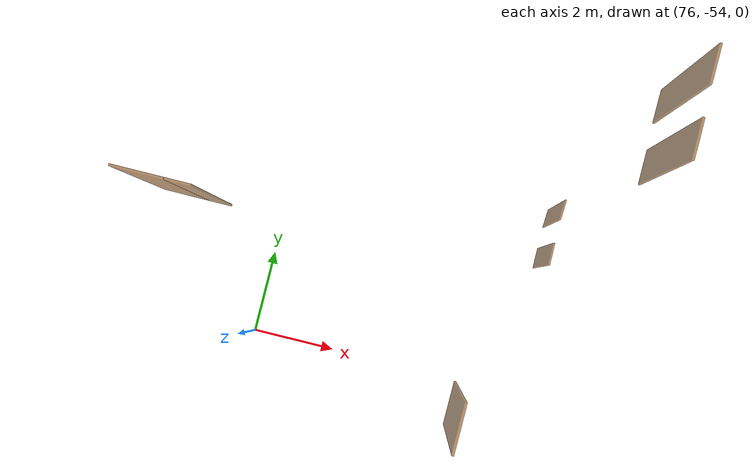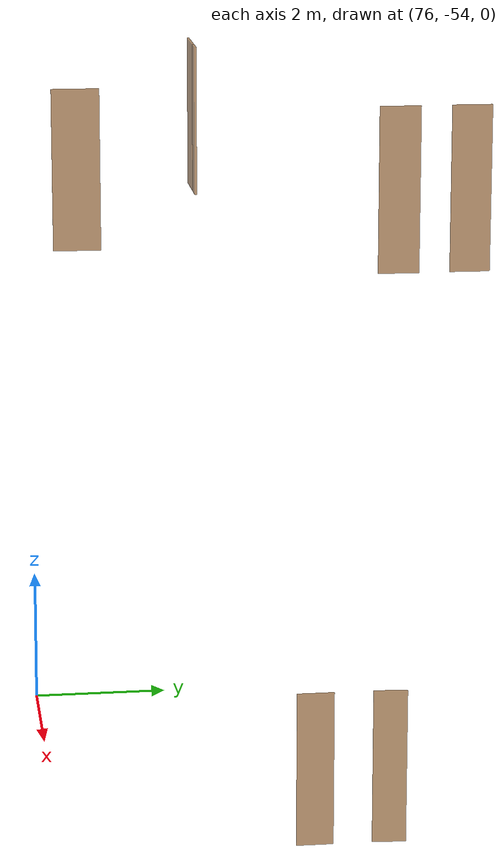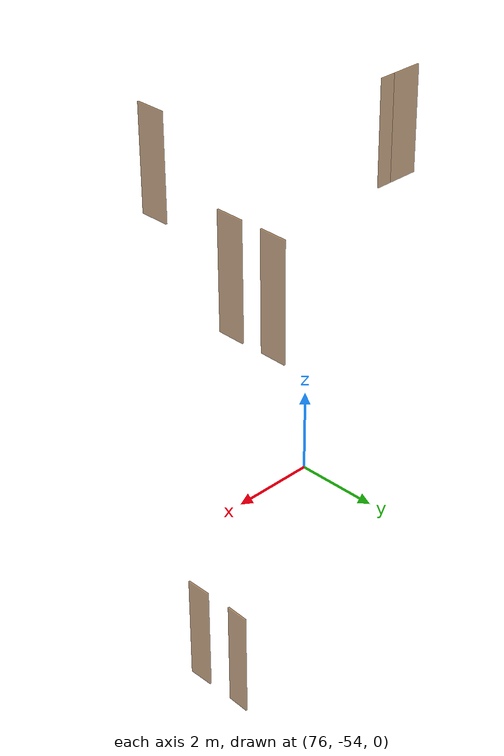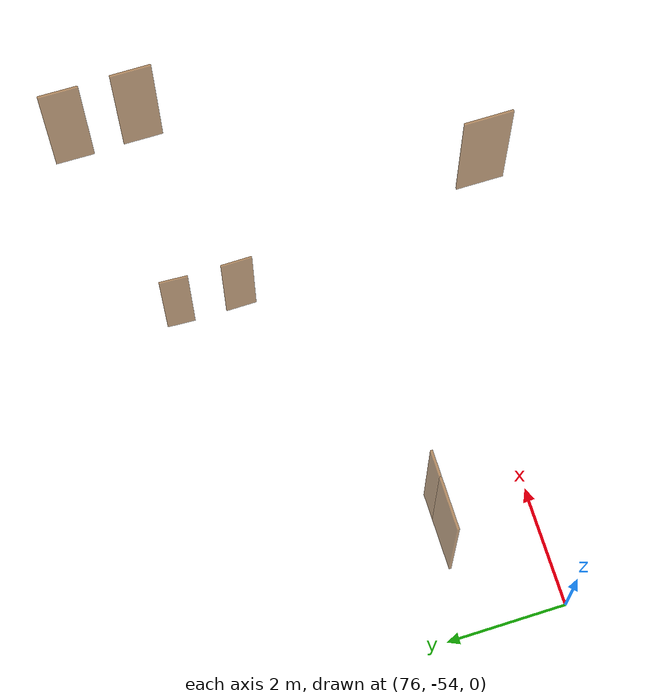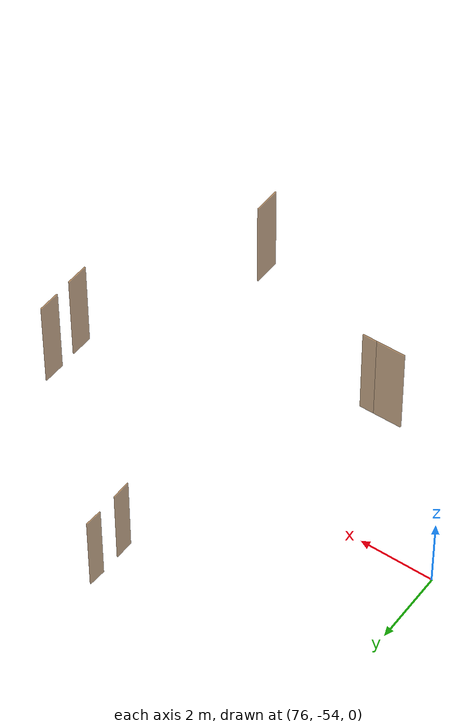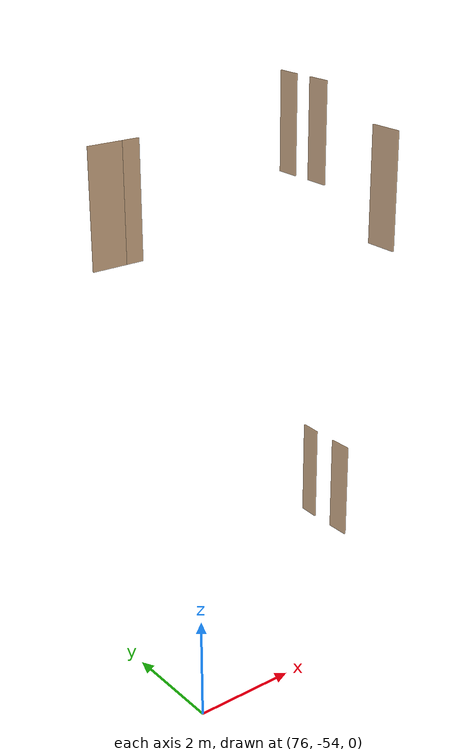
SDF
<sdf version="1.7">
 <world name="sim_world">
  <model name="bano013">
   <pose>82.40057625517343 -49.518308076902656 0.0 0 0 1.5131615643267342</pose>
   <link name="right">
    <pose>0 0 1.11 0 0 0</pose>
    <visual name="right_visual">
     <geometry><box><size>0.4661509275095324 0.03 2.2</size></box></geometry>
     <material>
      <ambient>0.5 0.25 0 0.6</ambient>
      <diffuse>0.5 0.25 0 0.6</diffuse>
      <pbr><metal><metalness>0.0</metalness></metal></pbr>
     </material>
    </visual>
    <collision name="right_collision">
     <geometry><box><size>0.4661509275095324 0.03 2.2</size></box></geometry>
     <surface><contact><collide_bitmask>0x02</collide_bitmask></contact></surface>
    </collision>
    <inertial>
     <mass>50.0</mass>
     <inertia><ixx>20.17041666666667</ixx><iyy>21.072069530074995</iyy><izz>0.9091528634083224</izz></inertia>
    </inertial>
   </link>
   <joint name="right_joint" type="revolute">
    <parent>world</parent>
    <child>right</child>
    <axis><xyz>0 0 -1</xyz><limit><lower>0</lower><upper>1.57</upper></limit></axis>
    <pose>0.2380754637547662 0 0 0 0 0</pose>
   </joint>
   <plugin name="register_component" filename="libregister_component.so">
    <component name="Door">
     <v_max_door>0.5</v_max_door>
     <a_max_door>0.3</a_max_door>
     <a_nom_door>0.15</a_nom_door>
     <dx_min_door>0.01</dx_min_door>
     <f_max_door>500.0</f_max_door>
     <ros_interface>true</ros_interface>
     <door name="bano013" type="SwingDoor" left_joint_name="empty_joint" right_joint_name="right_joint"/>
    </component>
   </plugin>
  </model>
  <model name="bano014">
   <pose>82.38686242766777 -50.54673291538013 0.0 0 0 1.5707963267948966</pose>
   <link name="right">
    <pose>0 0 1.11 0 0 0</pose>
    <visual name="right_visual">
     <geometry><box><size>0.5110581105468108 0.03 2.2</size></box></geometry>
     <material>
      <ambient>0.5 0.25 0 0.6</ambient>
      <diffuse>0.5 0.25 0 0.6</diffuse>
      <pbr><metal><metalness>0.0</metalness></metal></pbr>
     </material>
    </visual>
    <collision name="right_collision">
     <geometry><box><size>0.5110581105468108 0.03 2.2</size></box></geometry>
     <surface><contact><collide_bitmask>0x02</collide_bitmask></contact></surface>
    </collision>
    <inertial>
     <mass>50.0</mass>
     <inertia><ixx>20.17041666666667</ixx><iyy>21.25491830148199</iyy><izz>1.092001634815318</izz></inertia>
    </inertial>
   </link>
   <joint name="right_joint" type="revolute">
    <parent>world</parent>
    <child>right</child>
    <axis><xyz>0 0 -1</xyz><limit><lower>0</lower><upper>1.57</upper></limit></axis>
    <pose>0.2605290552734054 0 0 0 0 0</pose>
   </joint>
   <plugin name="register_component" filename="libregister_component.so">
    <component name="Door">
     <v_max_door>0.5</v_max_door>
     <a_max_door>0.3</a_max_door>
     <a_nom_door>0.15</a_nom_door>
     <dx_min_door>0.01</dx_min_door>
     <f_max_door>500.0</f_max_door>
     <ros_interface>true</ros_interface>
     <door name="bano014" type="SwingDoor" left_joint_name="empty_joint" right_joint_name="right_joint"/>
    </component>
   </plugin>
  </model>
  <model name="TD0111AO">
   <pose>76.117156318815 -51.53420214612608 8.0 0 0 0.00017906532679788667</pose>
   <link name="right">
    <pose>0.3436496657607462 0 1.11 0 0 0</pose>
    <visual name="right_visual">
     <geometry><box><size>0.3336496657607462 0.03 2.2</size></box></geometry>
     <material>
      <ambient>0.5 0.25 0 0.6</ambient>
      <diffuse>0.5 0.25 0 0.6</diffuse>
      <pbr><metal><metalness>0.0</metalness></metal></pbr>
     </material>
    </visual>
    <collision name="right_collision">
     <geometry><box><size>0.3336496657607462 0.03 2.2</size></box></geometry>
     <surface><contact><collide_bitmask>0x02</collide_bitmask></contact></surface>
    </collision>
    <inertial>
     <mass>50.0</mass>
     <inertia><ixx>20.17041666666667</ixx><iyy>20.63050874775941</iyy><izz>0.4675920810927402</izz></inertia>
    </inertial>
   </link>
   <joint name="right_joint" type="revolute">
    <parent>world</parent>
    <child>right</child>
    <axis><xyz>0 0 -1</xyz><limit><lower>0</lower><upper>1.57</upper></limit></axis>
    <pose>0.1718248328803731 0 0 0 0 0</pose>
   </joint>
   <link name="left">
    <pose>-0.1718248328803731 0 1.11 0 0 0</pose>
    <visual name="left_visual">
     <geometry><box><size>0.6772993315214924 0.03 2.2</size></box></geometry>
     <material>
      <ambient>0.5 0.25 0 0.6</ambient>
      <diffuse>0.5 0.25 0 0.6</diffuse>
      <pbr><metal><metalness>0.0</metalness></metal></pbr>
     </material>
    </visual>
    <collision name="left_collision">
     <geometry><box><size>0.6772993315214924 0.03 2.2</size></box></geometry>
     <surface><contact><collide_bitmask>0x02</collide_bitmask></contact></surface>
    </collision>
    <inertial>
     <mass>50.0</mass>
     <inertia><ixx>20.17041666666667</ixx><iyy>22.07805993533109</iyy><izz>1.9151432686644185</izz></inertia>
    </inertial>
   </link>
   <joint name="left_joint" type="revolute">
    <parent>world</parent>
    <child>left</child>
    <axis><xyz>0 0 -1</xyz><limit><lower>-1.57</lower><upper>0</upper></limit></axis>
    <pose>-0.3436496657607462 0 0 0 0 0</pose>
   </joint>
   <plugin name="register_component" filename="libregister_component.so">
    <component name="Door">
     <v_max_door>0.5</v_max_door>
     <a_max_door>0.3</a_max_door>
     <a_nom_door>0.15</a_nom_door>
     <dx_min_door>0.01</dx_min_door>
     <f_max_door>500.0</f_max_door>
     <ros_interface>true</ros_interface>
     <door name="TD0111AO" type="DoubleSwingDoor" left_joint_name="left_joint" right_joint_name="right_joint"/>
    </component>
   </plugin>
  </model>
  <model name="TD0101AO2">
   <pose>80.46225319380048 -53.56661356564936 8.0 0 0 -1.5821062922475102</pose>
   <link name="right">
    <pose>0 0 1.11 0 0 0</pose>
    <visual name="right_visual">
     <geometry><box><size>0.6464568341391322 0.03 2.2</size></box></geometry>
     <material>
      <ambient>0.5 0.25 0 0.6</ambient>
      <diffuse>0.5 0.25 0 0.6</diffuse>
      <pbr><metal><metalness>0.0</metalness></metal></pbr>
     </material>
    </visual>
    <collision name="right_collision">
     <geometry><box><size>0.6464568341391322 0.03 2.2</size></box></geometry>
     <surface><contact><collide_bitmask>0x02</collide_bitmask></contact></surface>
    </collision>
    <inertial>
     <mass>50.0</mass>
     <inertia><ixx>20.17041666666667</ixx><iyy>21.907943493354963</iyy><izz>1.74502682668829</izz></inertia>
    </inertial>
   </link>
   <joint name="right_joint" type="revolute">
    <parent>world</parent>
    <child>right</child>
    <axis><xyz>0 0 1</xyz><limit><lower>0</lower><upper>1.57</upper></limit></axis>
    <pose>0.3282284170695661 0 0 0 0 0</pose>
   </joint>
   <plugin name="register_component" filename="libregister_component.so">
    <component name="Door">
     <v_max_door>0.5</v_max_door>
     <a_max_door>0.3</a_max_door>
     <a_nom_door>0.15</a_nom_door>
     <dx_min_door>0.01</dx_min_door>
     <f_max_door>500.0</f_max_door>
     <ros_interface>true</ros_interface>
     <door name="TD0101AO2" type="SwingDoor" left_joint_name="empty_joint" right_joint_name="right_joint"/>
    </component>
   </plugin>
  </model>
  <model name="bano12">
   <pose>82.42250377956982 -48.55080670870155 8.0 0 0 1.549933353693263</pose>
   <link name="right">
    <pose>0 0 1.11 0 0 0</pose>
    <visual name="right_visual">
     <geometry><box><size>0.5266028313164499 0.03 2.2</size></box></geometry>
     <material>
      <ambient>0.5 0.25 0 0.6</ambient>
      <diffuse>0.5 0.25 0 0.6</diffuse>
      <pbr><metal><metalness>0.0</metalness></metal></pbr>
     </material>
    </visual>
    <collision name="right_collision">
     <geometry><box><size>0.5266028313164499 0.03 2.2</size></box></geometry>
     <surface><contact><collide_bitmask>0x02</collide_bitmask></contact></surface>
    </collision>
    <inertial>
     <mass>50.0</mass>
     <inertia><ixx>20.17041666666667</ixx><iyy>21.322127258127093</iyy><izz>1.1592105914604227</izz></inertia>
    </inertial>
   </link>
   <joint name="right_joint" type="revolute">
    <parent>world</parent>
    <child>right</child>
    <axis><xyz>0 0 -1</xyz><limit><lower>0</lower><upper>1.57</upper></limit></axis>
    <pose>0.26830141565822496 0 0 0 0 0</pose>
   </joint>
   <plugin name="register_component" filename="libregister_component.so">
    <component name="Door">
     <v_max_door>0.5</v_max_door>
     <a_max_door>0.3</a_max_door>
     <a_nom_door>0.15</a_nom_door>
     <dx_min_door>0.01</dx_min_door>
     <f_max_door>500.0</f_max_door>
     <ros_interface>true</ros_interface>
     <door name="bano12" type="SwingDoor" left_joint_name="empty_joint" right_joint_name="right_joint"/>
    </component>
   </plugin>
  </model>
  <model name="bano13">
   <pose>82.4238737200315 -49.49501255397513 8.0 0 0 1.554816171932805</pose>
   <link name="right">
    <pose>0 0 1.11 0 0 0</pose>
    <visual name="right_visual">
     <geometry><box><size>0.5400908523598633 0.03 2.2</size></box></geometry>
     <material>
      <ambient>0.5 0.25 0 0.6</ambient>
      <diffuse>0.5 0.25 0 0.6</diffuse>
      <pbr><metal><metalness>0.0</metalness></metal></pbr>
     </material>
    </visual>
    <collision name="right_collision">
     <geometry><box><size>0.5400908523598633 0.03 2.2</size></box></geometry>
     <surface><contact><collide_bitmask>0x02</collide_bitmask></contact></surface>
    </collision>
    <inertial>
     <mass>50.0</mass>
     <inertia><ixx>20.17041666666667</ixx><iyy>21.38207553667835</iyy><izz>1.219158870011682</izz></inertia>
    </inertial>
   </link>
   <joint name="right_joint" type="revolute">
    <parent>world</parent>
    <child>right</child>
    <axis><xyz>0 0 -1</xyz><limit><lower>0</lower><upper>1.57</upper></limit></axis>
    <pose>0.27504542617993166 0 0 0 0 0</pose>
   </joint>
   <plugin name="register_component" filename="libregister_component.so">
    <component name="Door">
     <v_max_door>0.5</v_max_door>
     <a_max_door>0.3</a_max_door>
     <a_nom_door>0.15</a_nom_door>
     <dx_min_door>0.01</dx_min_door>
     <f_max_door>500.0</f_max_door>
     <ros_interface>true</ros_interface>
     <door name="bano13" type="SwingDoor" left_joint_name="empty_joint" right_joint_name="right_joint"/>
    </component>
   </plugin>
  </model>
 </world>
</sdf>
